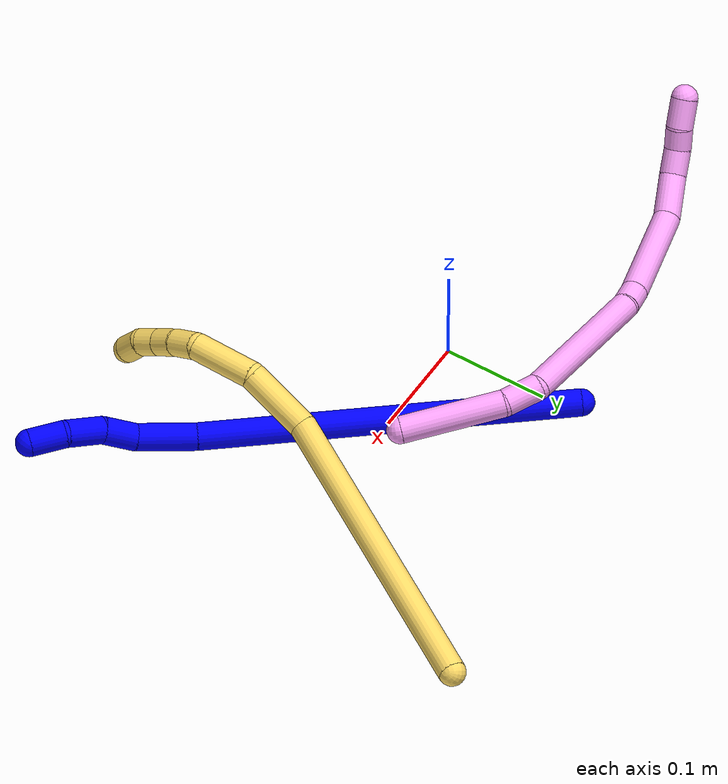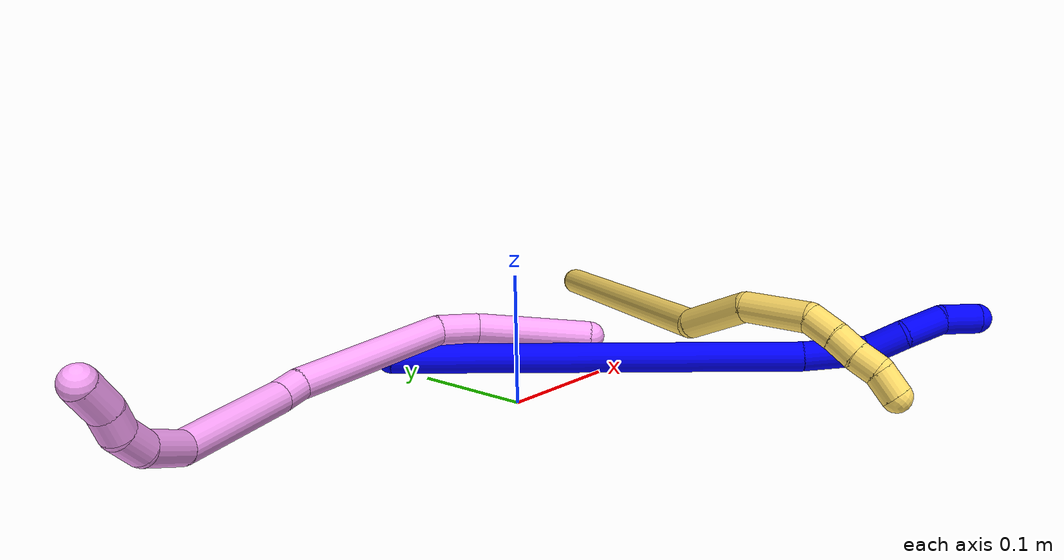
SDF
<sdf version="1.7">
 <world name="default">
  <model name="1">
   <static>0</static>
   <link name="1">
    <collision name="collision-cylinder-e_1_1_4">
     <pose>0.081277 -0.113949 0.100041 0.8503 0.492042 0.226413</pose>
     <geometry><cylinder><radius>0.0125</radius><length>0.344085</length></cylinder></geometry>
     <surface>
      <friction><ode><mu>1.16</mu><mu2>1.16</mu2><slip1>0</slip1><slip2>0</slip2></ode></friction>
      <contact><ode><kp>1e+06</kp><kd>1</kd><max_vel>0</max_vel><min_depth>0.001</min_depth></ode></contact>
     </surface>
    </collision>
    <visual name="visual-cylinder-e_1_1_4">
     <pose>0.081277 -0.113949 0.100041 0.8503 0.492042 0.226413</pose>
     <geometry><cylinder><radius>0.0125</radius><length>0.344085</length></cylinder></geometry>
     <material><ambient>0 0 1 1</ambient></material>
    </visual>
    <collision name="collision-cylinder-e_2_4_5">
     <pose>0.177201 -0.244045 0.216435 0.77905 0.567415 0.238248</pose>
     <geometry><cylinder><radius>0.0125</radius><length>0.054504</length></cylinder></geometry>
     <surface>
      <friction><ode><mu>1.16</mu><mu2>1.16</mu2><slip1>0</slip1><slip2>0</slip2></ode></friction>
      <contact><ode><kp>1e+06</kp><kd>1</kd><max_vel>0</max_vel><min_depth>0.001</min_depth></ode></contact>
     </surface>
    </collision>
    <visual name="visual-cylinder-e_2_4_5">
     <pose>0.177201 -0.244045 0.216435 0.77905 0.567415 0.238248</pose>
     <geometry><cylinder><radius>0.0125</radius><length>0.054504</length></cylinder></geometry>
     <material><ambient>0 0 1 1</ambient></material>
    </visual>
    <collision name="collision-cylinder-e_3_5_6">
     <pose>0.204347 -0.265776 0.241557 0.567055 0.876977 0.271592</pose>
     <geometry><cylinder><radius>0.0125</radius><length>0.032514</length></cylinder></geometry>
     <surface>
      <friction><ode><mu>1.16</mu><mu2>1.16</mu2><slip1>0</slip1><slip2>0</slip2></ode></friction>
      <contact><ode><kp>1e+06</kp><kd>1</kd><max_vel>0</max_vel><min_depth>0.001</min_depth></ode></contact>
     </surface>
    </collision>
    <visual name="visual-cylinder-e_3_5_6">
     <pose>0.204347 -0.265776 0.241557 0.567055 0.876977 0.271592</pose>
     <geometry><cylinder><radius>0.0125</radius><length>0.032514</length></cylinder></geometry>
     <material><ambient>0 0 1 1</ambient></material>
    </visual>
    <collision name="collision-cylinder-e_4_6_7">
     <pose>0.230526 -0.281422 0.25634 1.03212 0.86237 0.510629</pose>
     <geometry><cylinder><radius>0.0125</radius><length>0.036032</length></cylinder></geometry>
     <surface>
      <friction><ode><mu>1.16</mu><mu2>1.16</mu2><slip1>0</slip1><slip2>0</slip2></ode></friction>
      <contact><ode><kp>1e+06</kp><kd>1</kd><max_vel>0</max_vel><min_depth>0.001</min_depth></ode></contact>
     </surface>
    </collision>
    <visual name="visual-cylinder-e_4_6_7">
     <pose>0.230526 -0.281422 0.25634 1.03212 0.86237 0.510629</pose>
     <geometry><cylinder><radius>0.0125</radius><length>0.036032</length></cylinder></geometry>
     <material><ambient>0 0 1 1</ambient></material>
    </visual>
    <collision name="collision-cylinder-e_5_7_2">
     <pose>0.252561 -0.303795 0.269331 1.0551 0.533236 0.315612</pose>
     <geometry><cylinder><radius>0.0125</radius><length>0.032865</length></cylinder></geometry>
     <surface>
      <friction><ode><mu>1.16</mu><mu2>1.16</mu2><slip1>0</slip1><slip2>0</slip2></ode></friction>
      <contact><ode><kp>1e+06</kp><kd>1</kd><max_vel>0</max_vel><min_depth>0.001</min_depth></ode></contact>
     </surface>
    </collision>
    <visual name="visual-cylinder-e_5_7_2">
     <pose>0.252561 -0.303795 0.269331 1.0551 0.533236 0.315612</pose>
     <geometry><cylinder><radius>0.0125</radius><length>0.032865</length></cylinder></geometry>
     <material><ambient>0 0 1 1</ambient></material>
    </visual>
    <collision name="collision-sphere-2">
     <pose>0.260914 -0.316106 0.27631 0 -0 0</pose>
     <geometry><sphere><radius>0.0125</radius></sphere></geometry>
     <surface>
      <friction><ode><mu>1.16</mu><mu2>1.16</mu2><slip1>0</slip1><slip2>0</slip2></ode></friction>
      <contact><ode><kp>1e+06</kp><kd>1</kd><max_vel>0</max_vel><min_depth>0.001</min_depth></ode></contact>
     </surface>
    </collision>
    <visual name="visual-sphere-2">
     <pose>0.260914 -0.316106 0.27631 0 -0 0</pose>
     <geometry><sphere><radius>0.0125</radius></sphere></geometry>
     <material><ambient>0 0 1 1</ambient></material>
    </visual>
    <collision name="collision-sphere-7">
     <pose>0.244208 -0.291484 0.262353 0 -0 0</pose>
     <geometry><sphere><radius>0.0125</radius></sphere></geometry>
     <surface>
      <friction><ode><mu>1.16</mu><mu2>1.16</mu2><slip1>0</slip1><slip2>0</slip2></ode></friction>
      <contact><ode><kp>1e+06</kp><kd>1</kd><max_vel>0</max_vel><min_depth>0.001</min_depth></ode></contact>
     </surface>
    </collision>
    <visual name="visual-sphere-7">
     <pose>0.244208 -0.291484 0.262353 0 -0 0</pose>
     <geometry><sphere><radius>0.0125</radius></sphere></geometry>
     <material><ambient>0 0 1 1</ambient></material>
    </visual>
    <collision name="collision-sphere-6">
     <pose>0.216845 -0.27136 0.250326 0 -0 0</pose>
     <geometry><sphere><radius>0.0125</radius></sphere></geometry>
     <surface>
      <friction><ode><mu>1.16</mu><mu2>1.16</mu2><slip1>0</slip1><slip2>0</slip2></ode></friction>
      <contact><ode><kp>1e+06</kp><kd>1</kd><max_vel>0</max_vel><min_depth>0.001</min_depth></ode></contact>
     </surface>
    </collision>
    <visual name="visual-sphere-6">
     <pose>0.216845 -0.27136 0.250326 0 -0 0</pose>
     <geometry><sphere><radius>0.0125</radius></sphere></geometry>
     <material><ambient>0 0 1 1</ambient></material>
    </visual>
    <collision name="collision-sphere-5">
     <pose>0.191848 -0.260192 0.232788 0 -0 0</pose>
     <geometry><sphere><radius>0.0125</radius></sphere></geometry>
     <surface>
      <friction><ode><mu>1.16</mu><mu2>1.16</mu2><slip1>0</slip1><slip2>0</slip2></ode></friction>
      <contact><ode><kp>1e+06</kp><kd>1</kd><max_vel>0</max_vel><min_depth>0.001</min_depth></ode></contact>
     </surface>
    </collision>
    <visual name="visual-sphere-5">
     <pose>0.191848 -0.260192 0.232788 0 -0 0</pose>
     <geometry><sphere><radius>0.0125</radius></sphere></geometry>
     <material><ambient>0 0 1 1</ambient></material>
    </visual>
    <collision name="collision-sphere-1">
     <geometry><sphere><radius>0.0125</radius></sphere></geometry>
     <surface>
      <friction><ode><mu>1.16</mu><mu2>1.16</mu2><slip1>0</slip1><slip2>0</slip2></ode></friction>
      <contact><ode><kp>1e+06</kp><kd>1</kd><max_vel>0</max_vel><min_depth>0.001</min_depth></ode></contact>
     </surface>
    </collision>
    <visual name="visual-sphere-1">
     <geometry><sphere><radius>0.0125</radius></sphere></geometry>
     <material><ambient>0 0 1 1</ambient></material>
    </visual>
    <collision name="collision-sphere-4">
     <pose>0.162555 -0.227898 0.200082 0 -0 0</pose>
     <geometry><sphere><radius>0.0125</radius></sphere></geometry>
     <surface>
      <friction><ode><mu>1.16</mu><mu2>1.16</mu2><slip1>0</slip1><slip2>0</slip2></ode></friction>
      <contact><ode><kp>1e+06</kp><kd>1</kd><max_vel>0</max_vel><min_depth>0.001</min_depth></ode></contact>
     </surface>
    </collision>
    <visual name="visual-sphere-4">
     <pose>0.162555 -0.227898 0.200082 0 -0 0</pose>
     <geometry><sphere><radius>0.0125</radius></sphere></geometry>
     <material><ambient>0 0 1 1</ambient></material>
    </visual>
    <inertial>
     <pose>0.121751 -0.162551 0.144323 0 -0 0</pose>
     <mass>0.5</mass>
     <inertia>
      <ixx>0.00365</ixx>
      <ixy>0</ixy>
      <ixz>0</ixz>
      <iyy>0.003142</iyy>
      <iyz>0</iyz>
      <izz>0.000668</izz>
     </inertia>
    </inertial>
   </link>
   <pose>-0.005464 0.136641 0.011496 1.55281 -0.943608 -0.252803</pose>
  </model>
  <model name="4">
   <static>0</static>
   <link name="4">
    <collision name="collision-cylinder-e_1_1_4">
     <pose>-0.032458 0.034904 -0.002007 -1.62824 -0.748282 0.788212</pose>
     <geometry><cylinder><radius>0.0125</radius><length>0.095413</length></cylinder></geometry>
     <surface>
      <friction><ode><mu>1.16</mu><mu2>1.16</mu2><slip1>0</slip1><slip2>0</slip2></ode></friction>
      <contact><ode><kp>1e+06</kp><kd>1</kd><max_vel>0</max_vel><min_depth>0.001</min_depth></ode></contact>
     </surface>
    </collision>
    <visual name="visual-cylinder-e_1_1_4">
     <pose>-0.032458 0.034904 -0.002007 -1.62824 -0.748282 0.788212</pose>
     <geometry><cylinder><radius>0.0125</radius><length>0.095413</length></cylinder></geometry>
     <material><ambient>1 0.65098 0.996078 1</ambient></material>
    </visual>
    <collision name="collision-cylinder-e_2_4_5">
     <pose>-0.079661 0.078857 -0.002952 -1.45385 -1.01731 0.920761</pose>
     <geometry><cylinder><radius>0.0125</radius><length>0.034663</length></cylinder></geometry>
     <surface>
      <friction><ode><mu>1.16</mu><mu2>1.16</mu2><slip1>0</slip1><slip2>0</slip2></ode></friction>
      <contact><ode><kp>1e+06</kp><kd>1</kd><max_vel>0</max_vel><min_depth>0.001</min_depth></ode></contact>
     </surface>
    </collision>
    <visual name="visual-cylinder-e_2_4_5">
     <pose>-0.079661 0.078857 -0.002952 -1.45385 -1.01731 0.920761</pose>
     <geometry><cylinder><radius>0.0125</radius><length>0.034663</length></cylinder></geometry>
     <material><ambient>1 0.65098 0.996078 1</ambient></material>
    </visual>
    <collision name="collision-cylinder-e_3_5_6">
     <pose>-0.161052 0.095544 0.006049 -0.766244 -1.40698 0.658856</pose>
     <geometry><cylinder><radius>0.0125</radius><length>0.135103</length></cylinder></geometry>
     <surface>
      <friction><ode><mu>1.16</mu><mu2>1.16</mu2><slip1>0</slip1><slip2>0</slip2></ode></friction>
      <contact><ode><kp>1e+06</kp><kd>1</kd><max_vel>0</max_vel><min_depth>0.001</min_depth></ode></contact>
     </surface>
    </collision>
    <visual name="visual-cylinder-e_3_5_6">
     <pose>-0.161052 0.095544 0.006049 -0.766244 -1.40698 0.658856</pose>
     <geometry><cylinder><radius>0.0125</radius><length>0.135103</length></cylinder></geometry>
     <material><ambient>1 0.65098 0.996078 1</ambient></material>
    </visual>
    <collision name="collision-cylinder-e_4_6_7">
     <pose>-0.238188 0.101726 0.015674 0.71261 -1.36127 -0.585422</pose>
     <geometry><cylinder><radius>0.0125</radius><length>0.021446</length></cylinder></geometry>
     <surface>
      <friction><ode><mu>1.16</mu><mu2>1.16</mu2><slip1>0</slip1><slip2>0</slip2></ode></friction>
      <contact><ode><kp>1e+06</kp><kd>1</kd><max_vel>0</max_vel><min_depth>0.001</min_depth></ode></contact>
     </surface>
    </collision>
    <visual name="visual-cylinder-e_4_6_7">
     <pose>-0.238188 0.101726 0.015674 0.71261 -1.36127 -0.585422</pose>
     <geometry><cylinder><radius>0.0125</radius><length>0.021446</length></cylinder></geometry>
     <material><ambient>1 0.65098 0.996078 1</ambient></material>
    </visual>
    <collision name="collision-cylinder-e_5_7_8">
     <pose>-0.294693 0.093442 0.031924 0.438291 -1.23458 -0.313593</pose>
     <geometry><cylinder><radius>0.0125</radius><length>0.097492</length></cylinder></geometry>
     <surface>
      <friction><ode><mu>1.16</mu><mu2>1.16</mu2><slip1>0</slip1><slip2>0</slip2></ode></friction>
      <contact><ode><kp>1e+06</kp><kd>1</kd><max_vel>0</max_vel><min_depth>0.001</min_depth></ode></contact>
     </surface>
    </collision>
    <visual name="visual-cylinder-e_5_7_8">
     <pose>-0.294693 0.093442 0.031924 0.438291 -1.23458 -0.313593</pose>
     <geometry><cylinder><radius>0.0125</radius><length>0.097492</length></cylinder></geometry>
     <material><ambient>1 0.65098 0.996078 1</ambient></material>
    </visual>
    <collision name="collision-cylinder-e_6_8_9">
     <pose>-0.356047 0.084525 0.060763 0.145485 -0.815917 -0.06297</pose>
     <geometry><cylinder><radius>0.0125</radius><length>0.042116</length></cylinder></geometry>
     <surface>
      <friction><ode><mu>1.16</mu><mu2>1.16</mu2><slip1>0</slip1><slip2>0</slip2></ode></friction>
      <contact><ode><kp>1e+06</kp><kd>1</kd><max_vel>0</max_vel><min_depth>0.001</min_depth></ode></contact>
     </surface>
    </collision>
    <visual name="visual-cylinder-e_6_8_9">
     <pose>-0.356047 0.084525 0.060763 0.145485 -0.815917 -0.06297</pose>
     <geometry><cylinder><radius>0.0125</radius><length>0.042116</length></cylinder></geometry>
     <material><ambient>1 0.65098 0.996078 1</ambient></material>
    </visual>
    <collision name="collision-cylinder-e_7_9_10">
     <pose>-0.377653 0.08433 0.085977 -0.171706 -0.514022 0.045232</pose>
     <geometry><cylinder><radius>0.0125</radius><length>0.025495</length></cylinder></geometry>
     <surface>
      <friction><ode><mu>1.16</mu><mu2>1.16</mu2><slip1>0</slip1><slip2>0</slip2></ode></friction>
      <contact><ode><kp>1e+06</kp><kd>1</kd><max_vel>0</max_vel><min_depth>0.001</min_depth></ode></contact>
     </surface>
    </collision>
    <visual name="visual-cylinder-e_7_9_10">
     <pose>-0.377653 0.08433 0.085977 -0.171706 -0.514022 0.045232</pose>
     <geometry><cylinder><radius>0.0125</radius><length>0.025495</length></cylinder></geometry>
     <material><ambient>1 0.65098 0.996078 1</ambient></material>
    </visual>
    <collision name="collision-cylinder-e_8_10_11">
     <pose>-0.385513 0.088927 0.106675 -0.269859 -0.155955 0.021214</pose>
     <geometry><cylinder><radius>0.0125</radius><length>0.020504</length></cylinder></geometry>
     <surface>
      <friction><ode><mu>1.16</mu><mu2>1.16</mu2><slip1>0</slip1><slip2>0</slip2></ode></friction>
      <contact><ode><kp>1e+06</kp><kd>1</kd><max_vel>0</max_vel><min_depth>0.001</min_depth></ode></contact>
     </surface>
    </collision>
    <visual name="visual-cylinder-e_8_10_11">
     <pose>-0.385513 0.088927 0.106675 -0.269859 -0.155955 0.021214</pose>
     <geometry><cylinder><radius>0.0125</radius><length>0.020504</length></cylinder></geometry>
     <material><ambient>1 0.65098 0.996078 1</ambient></material>
    </visual>
    <collision name="collision-cylinder-e_9_11_2">
     <pose>-0.392122 0.094885 0.128965 -0.254457 -0.369689 0.047827</pose>
     <geometry><cylinder><radius>0.0125</radius><length>0.027767</length></cylinder></geometry>
     <surface>
      <friction><ode><mu>1.16</mu><mu2>1.16</mu2><slip1>0</slip1><slip2>0</slip2></ode></friction>
      <contact><ode><kp>1e+06</kp><kd>1</kd><max_vel>0</max_vel><min_depth>0.001</min_depth></ode></contact>
     </surface>
    </collision>
    <visual name="visual-cylinder-e_9_11_2">
     <pose>-0.392122 0.094885 0.128965 -0.254457 -0.369689 0.047827</pose>
     <geometry><cylinder><radius>0.0125</radius><length>0.027767</length></cylinder></geometry>
     <material><ambient>1 0.65098 0.996078 1</ambient></material>
    </visual>
    <collision name="collision-sphere-2">
     <pose>-0.397138 0.098144 0.141493 0 -0 0</pose>
     <geometry><sphere><radius>0.0125</radius></sphere></geometry>
     <surface>
      <friction><ode><mu>1.16</mu><mu2>1.16</mu2><slip1>0</slip1><slip2>0</slip2></ode></friction>
      <contact><ode><kp>1e+06</kp><kd>1</kd><max_vel>0</max_vel><min_depth>0.001</min_depth></ode></contact>
     </surface>
    </collision>
    <visual name="visual-sphere-2">
     <pose>-0.397138 0.098144 0.141493 0 -0 0</pose>
     <geometry><sphere><radius>0.0125</radius></sphere></geometry>
     <material><ambient>1 0.65098 0.996078 1</ambient></material>
    </visual>
    <collision name="collision-sphere-11">
     <pose>-0.387106 0.091627 0.116436 0 -0 0</pose>
     <geometry><sphere><radius>0.0125</radius></sphere></geometry>
     <surface>
      <friction><ode><mu>1.16</mu><mu2>1.16</mu2><slip1>0</slip1><slip2>0</slip2></ode></friction>
      <contact><ode><kp>1e+06</kp><kd>1</kd><max_vel>0</max_vel><min_depth>0.001</min_depth></ode></contact>
     </surface>
    </collision>
    <visual name="visual-sphere-11">
     <pose>-0.387106 0.091627 0.116436 0 -0 0</pose>
     <geometry><sphere><radius>0.0125</radius></sphere></geometry>
     <material><ambient>1 0.65098 0.996078 1</ambient></material>
    </visual>
    <collision name="collision-sphere-10">
     <pose>-0.383921 0.086227 0.096914 0 -0 0</pose>
     <geometry><sphere><radius>0.0125</radius></sphere></geometry>
     <surface>
      <friction><ode><mu>1.16</mu><mu2>1.16</mu2><slip1>0</slip1><slip2>0</slip2></ode></friction>
      <contact><ode><kp>1e+06</kp><kd>1</kd><max_vel>0</max_vel><min_depth>0.001</min_depth></ode></contact>
     </surface>
    </collision>
    <visual name="visual-sphere-10">
     <pose>-0.383921 0.086227 0.096914 0 -0 0</pose>
     <geometry><sphere><radius>0.0125</radius></sphere></geometry>
     <material><ambient>1 0.65098 0.996078 1</ambient></material>
    </visual>
    <collision name="collision-sphere-9">
     <pose>-0.371385 0.082433 0.075039 0 -0 0</pose>
     <geometry><sphere><radius>0.0125</radius></sphere></geometry>
     <surface>
      <friction><ode><mu>1.16</mu><mu2>1.16</mu2><slip1>0</slip1><slip2>0</slip2></ode></friction>
      <contact><ode><kp>1e+06</kp><kd>1</kd><max_vel>0</max_vel><min_depth>0.001</min_depth></ode></contact>
     </surface>
    </collision>
    <visual name="visual-sphere-9">
     <pose>-0.371385 0.082433 0.075039 0 -0 0</pose>
     <geometry><sphere><radius>0.0125</radius></sphere></geometry>
     <material><ambient>1 0.65098 0.996078 1</ambient></material>
    </visual>
    <collision name="collision-sphere-4">
     <pose>-0.064917 0.069809 -0.004015 0 -0 0</pose>
     <geometry><sphere><radius>0.0125</radius></sphere></geometry>
     <surface>
      <friction><ode><mu>1.16</mu><mu2>1.16</mu2><slip1>0</slip1><slip2>0</slip2></ode></friction>
      <contact><ode><kp>1e+06</kp><kd>1</kd><max_vel>0</max_vel><min_depth>0.001</min_depth></ode></contact>
     </surface>
    </collision>
    <visual name="visual-sphere-4">
     <pose>-0.064917 0.069809 -0.004015 0 -0 0</pose>
     <geometry><sphere><radius>0.0125</radius></sphere></geometry>
     <material><ambient>1 0.65098 0.996078 1</ambient></material>
    </visual>
    <collision name="collision-sphere-1">
     <geometry><sphere><radius>0.0125</radius></sphere></geometry>
     <surface>
      <friction><ode><mu>1.16</mu><mu2>1.16</mu2><slip1>0</slip1><slip2>0</slip2></ode></friction>
      <contact><ode><kp>1e+06</kp><kd>1</kd><max_vel>0</max_vel><min_depth>0.001</min_depth></ode></contact>
     </surface>
    </collision>
    <visual name="visual-sphere-1">
     <geometry><sphere><radius>0.0125</radius></sphere></geometry>
     <material><ambient>1 0.65098 0.996078 1</ambient></material>
    </visual>
    <collision name="collision-sphere-8">
     <pose>-0.340709 0.086617 0.046486 0 -0 0</pose>
     <geometry><sphere><radius>0.0125</radius></sphere></geometry>
     <surface>
      <friction><ode><mu>1.16</mu><mu2>1.16</mu2><slip1>0</slip1><slip2>0</slip2></ode></friction>
      <contact><ode><kp>1e+06</kp><kd>1</kd><max_vel>0</max_vel><min_depth>0.001</min_depth></ode></contact>
     </surface>
    </collision>
    <visual name="visual-sphere-8">
     <pose>-0.340709 0.086617 0.046486 0 -0 0</pose>
     <geometry><sphere><radius>0.0125</radius></sphere></geometry>
     <material><ambient>1 0.65098 0.996078 1</ambient></material>
    </visual>
    <collision name="collision-sphere-5">
     <pose>-0.094405 0.087905 -0.001889 0 -0 0</pose>
     <geometry><sphere><radius>0.0125</radius></sphere></geometry>
     <surface>
      <friction><ode><mu>1.16</mu><mu2>1.16</mu2><slip1>0</slip1><slip2>0</slip2></ode></friction>
      <contact><ode><kp>1e+06</kp><kd>1</kd><max_vel>0</max_vel><min_depth>0.001</min_depth></ode></contact>
     </surface>
    </collision>
    <visual name="visual-sphere-5">
     <pose>-0.094405 0.087905 -0.001889 0 -0 0</pose>
     <geometry><sphere><radius>0.0125</radius></sphere></geometry>
     <material><ambient>1 0.65098 0.996078 1</ambient></material>
    </visual>
    <collision name="collision-sphere-6">
     <pose>-0.227699 0.103184 0.013987 0 -0 0</pose>
     <geometry><sphere><radius>0.0125</radius></sphere></geometry>
     <surface>
      <friction><ode><mu>1.16</mu><mu2>1.16</mu2><slip1>0</slip1><slip2>0</slip2></ode></friction>
      <contact><ode><kp>1e+06</kp><kd>1</kd><max_vel>0</max_vel><min_depth>0.001</min_depth></ode></contact>
     </surface>
    </collision>
    <visual name="visual-sphere-6">
     <pose>-0.227699 0.103184 0.013987 0 -0 0</pose>
     <geometry><sphere><radius>0.0125</radius></sphere></geometry>
     <material><ambient>1 0.65098 0.996078 1</ambient></material>
    </visual>
    <collision name="collision-sphere-7">
     <pose>-0.248676 0.100267 0.017362 0 -0 0</pose>
     <geometry><sphere><radius>0.0125</radius></sphere></geometry>
     <surface>
      <friction><ode><mu>1.16</mu><mu2>1.16</mu2><slip1>0</slip1><slip2>0</slip2></ode></friction>
      <contact><ode><kp>1e+06</kp><kd>1</kd><max_vel>0</max_vel><min_depth>0.001</min_depth></ode></contact>
     </surface>
    </collision>
    <visual name="visual-sphere-7">
     <pose>-0.248676 0.100267 0.017362 0 -0 0</pose>
     <geometry><sphere><radius>0.0125</radius></sphere></geometry>
     <material><ambient>1 0.65098 0.996078 1</ambient></material>
    </visual>
    <inertial>
     <pose>-0.209744 0.080863 0.028983 0 -0 0</pose>
     <mass>0.5</mass>
     <inertia>
      <ixx>0.000128</ixx>
      <ixy>0</ixy>
      <ixz>0</ixz>
      <iyy>0.000403</iyy>
      <iyz>0</iyz>
      <izz>0.00029</izz>
     </inertia>
    </inertial>
   </link>
   <pose>0.116406 0.022945 0.023857 0.482844 -0.269177 -0.033352</pose>
  </model>
  <model name="5">
   <static>0</static>
   <link name="5">
    <collision name="collision-cylinder-e_1_1_4">
     <pose>-0.086489 -0.110874 -0.026471 1.80515 -0.64907 -0.805784</pose>
     <geometry><cylinder><radius>0.0125</radius><length>0.286175</length></cylinder></geometry>
     <surface>
      <friction><ode><mu>1.16</mu><mu2>1.16</mu2><slip1>0</slip1><slip2>0</slip2></ode></friction>
      <contact><ode><kp>1e+06</kp><kd>1</kd><max_vel>0</max_vel><min_depth>0.001</min_depth></ode></contact>
     </surface>
    </collision>
    <visual name="visual-cylinder-e_1_1_4">
     <pose>-0.086489 -0.110874 -0.026471 1.80515 -0.64907 -0.805784</pose>
     <geometry><cylinder><radius>0.0125</radius><length>0.286175</length></cylinder></geometry>
     <material><ambient>1 0.858824 0.4 1</ambient></material>
    </visual>
    <collision name="collision-cylinder-e_2_4_5">
     <pose>-0.190189 -0.246458 -0.042933 1.18596 -0.573289 -0.392163</pose>
     <geometry><cylinder><radius>0.0125</radius><length>0.063465</length></cylinder></geometry>
     <surface>
      <friction><ode><mu>1.16</mu><mu2>1.16</mu2><slip1>0</slip1><slip2>0</slip2></ode></friction>
      <contact><ode><kp>1e+06</kp><kd>1</kd><max_vel>0</max_vel><min_depth>0.001</min_depth></ode></contact>
     </surface>
    </collision>
    <visual name="visual-cylinder-e_2_4_5">
     <pose>-0.190189 -0.246458 -0.042933 1.18596 -0.573289 -0.392163</pose>
     <geometry><cylinder><radius>0.0125</radius><length>0.063465</length></cylinder></geometry>
     <material><ambient>1 0.858824 0.4 1</ambient></material>
    </visual>
    <collision name="collision-cylinder-e_3_5_6">
     <pose>-0.214516 -0.299678 -0.029522 1.45201 -0.242921 -0.215877</pose>
     <geometry><cylinder><radius>0.0125</radius><length>0.059164</length></cylinder></geometry>
     <surface>
      <friction><ode><mu>1.16</mu><mu2>1.16</mu2><slip1>0</slip1><slip2>0</slip2></ode></friction>
      <contact><ode><kp>1e+06</kp><kd>1</kd><max_vel>0</max_vel><min_depth>0.001</min_depth></ode></contact>
     </surface>
    </collision>
    <visual name="visual-cylinder-e_3_5_6">
     <pose>-0.214516 -0.299678 -0.029522 1.45201 -0.242921 -0.215877</pose>
     <geometry><cylinder><radius>0.0125</radius><length>0.059164</length></cylinder></geometry>
     <material><ambient>1 0.858824 0.4 1</ambient></material>
    </visual>
    <collision name="collision-cylinder-e_4_6_7">
     <pose>-0.220955 -0.340755 -0.028993 1.79561 0.052505 0.065859</pose>
     <geometry><cylinder><radius>0.0125</radius><length>0.025816</length></cylinder></geometry>
     <surface>
      <friction><ode><mu>1.16</mu><mu2>1.16</mu2><slip1>0</slip1><slip2>0</slip2></ode></friction>
      <contact><ode><kp>1e+06</kp><kd>1</kd><max_vel>0</max_vel><min_depth>0.001</min_depth></ode></contact>
     </surface>
    </collision>
    <visual name="visual-cylinder-e_4_6_7">
     <pose>-0.220955 -0.340755 -0.028993 1.79561 0.052505 0.065859</pose>
     <geometry><cylinder><radius>0.0125</radius><length>0.025816</length></cylinder></geometry>
     <material><ambient>1 0.858824 0.4 1</ambient></material>
    </visual>
    <collision name="collision-cylinder-e_5_7_8">
     <pose>-0.218483 -0.363637 -0.034934 1.85983 0.165164 0.221027</pose>
     <geometry><cylinder><radius>0.0125</radius><length>0.021822</length></cylinder></geometry>
     <surface>
      <friction><ode><mu>1.16</mu><mu2>1.16</mu2><slip1>0</slip1><slip2>0</slip2></ode></friction>
      <contact><ode><kp>1e+06</kp><kd>1</kd><max_vel>0</max_vel><min_depth>0.001</min_depth></ode></contact>
     </surface>
    </collision>
    <visual name="visual-cylinder-e_5_7_8">
     <pose>-0.218483 -0.363637 -0.034934 1.85983 0.165164 0.221027</pose>
     <geometry><cylinder><radius>0.0125</radius><length>0.021822</length></cylinder></geometry>
     <material><ambient>1 0.858824 0.4 1</ambient></material>
    </visual>
    <collision name="collision-cylinder-e_6_8_9">
     <pose>-0.21494 -0.383931 -0.039715 1.7408 0.171125 0.202803</pose>
     <geometry><cylinder><radius>0.0125</radius><length>0.020549</length></cylinder></geometry>
     <surface>
      <friction><ode><mu>1.16</mu><mu2>1.16</mu2><slip1>0</slip1><slip2>0</slip2></ode></friction>
      <contact><ode><kp>1e+06</kp><kd>1</kd><max_vel>0</max_vel><min_depth>0.001</min_depth></ode></contact>
     </surface>
    </collision>
    <visual name="visual-cylinder-e_6_8_9">
     <pose>-0.21494 -0.383931 -0.039715 1.7408 0.171125 0.202803</pose>
     <geometry><cylinder><radius>0.0125</radius><length>0.020549</length></cylinder></geometry>
     <material><ambient>1 0.858824 0.4 1</ambient></material>
    </visual>
    <collision name="collision-cylinder-e_7_9_2">
     <pose>-0.208212 -0.403196 -0.046045 2.03221 0.447501 0.703972</pose>
     <geometry><cylinder><radius>0.0125</radius><length>0.023009</length></cylinder></geometry>
     <surface>
      <friction><ode><mu>1.16</mu><mu2>1.16</mu2><slip1>0</slip1><slip2>0</slip2></ode></friction>
      <contact><ode><kp>1e+06</kp><kd>1</kd><max_vel>0</max_vel><min_depth>0.001</min_depth></ode></contact>
     </surface>
    </collision>
    <visual name="visual-cylinder-e_7_9_2">
     <pose>-0.208212 -0.403196 -0.046045 2.03221 0.447501 0.703972</pose>
     <geometry><cylinder><radius>0.0125</radius><length>0.023009</length></cylinder></geometry>
     <material><ambient>1 0.858824 0.4 1</ambient></material>
    </visual>
    <collision name="collision-sphere-2">
     <pose>-0.203234 -0.412484 -0.050663 0 -0 0</pose>
     <geometry><sphere><radius>0.0125</radius></sphere></geometry>
     <surface>
      <friction><ode><mu>1.16</mu><mu2>1.16</mu2><slip1>0</slip1><slip2>0</slip2></ode></friction>
      <contact><ode><kp>1e+06</kp><kd>1</kd><max_vel>0</max_vel><min_depth>0.001</min_depth></ode></contact>
     </surface>
    </collision>
    <visual name="visual-sphere-2">
     <pose>-0.203234 -0.412484 -0.050663 0 -0 0</pose>
     <geometry><sphere><radius>0.0125</radius></sphere></geometry>
     <material><ambient>1 0.858824 0.4 1</ambient></material>
    </visual>
    <collision name="collision-sphere-9">
     <pose>-0.21319 -0.393909 -0.041428 0 -0 0</pose>
     <geometry><sphere><radius>0.0125</radius></sphere></geometry>
     <surface>
      <friction><ode><mu>1.16</mu><mu2>1.16</mu2><slip1>0</slip1><slip2>0</slip2></ode></friction>
      <contact><ode><kp>1e+06</kp><kd>1</kd><max_vel>0</max_vel><min_depth>0.001</min_depth></ode></contact>
     </surface>
    </collision>
    <visual name="visual-sphere-9">
     <pose>-0.21319 -0.393909 -0.041428 0 -0 0</pose>
     <geometry><sphere><radius>0.0125</radius></sphere></geometry>
     <material><ambient>1 0.858824 0.4 1</ambient></material>
    </visual>
    <collision name="collision-sphere-4">
     <pose>-0.172977 -0.221748 -0.052941 0 -0 0</pose>
     <geometry><sphere><radius>0.0125</radius></sphere></geometry>
     <surface>
      <friction><ode><mu>1.16</mu><mu2>1.16</mu2><slip1>0</slip1><slip2>0</slip2></ode></friction>
      <contact><ode><kp>1e+06</kp><kd>1</kd><max_vel>0</max_vel><min_depth>0.001</min_depth></ode></contact>
     </surface>
    </collision>
    <visual name="visual-sphere-4">
     <pose>-0.172977 -0.221748 -0.052941 0 -0 0</pose>
     <geometry><sphere><radius>0.0125</radius></sphere></geometry>
     <material><ambient>1 0.858824 0.4 1</ambient></material>
    </visual>
    <collision name="collision-sphere-1">
     <geometry><sphere><radius>0.0125</radius></sphere></geometry>
     <surface>
      <friction><ode><mu>1.16</mu><mu2>1.16</mu2><slip1>0</slip1><slip2>0</slip2></ode></friction>
      <contact><ode><kp>1e+06</kp><kd>1</kd><max_vel>0</max_vel><min_depth>0.001</min_depth></ode></contact>
     </surface>
    </collision>
    <visual name="visual-sphere-1">
     <geometry><sphere><radius>0.0125</radius></sphere></geometry>
     <material><ambient>1 0.858824 0.4 1</ambient></material>
    </visual>
    <collision name="collision-sphere-8">
     <pose>-0.216689 -0.373953 -0.038002 0 -0 0</pose>
     <geometry><sphere><radius>0.0125</radius></sphere></geometry>
     <surface>
      <friction><ode><mu>1.16</mu><mu2>1.16</mu2><slip1>0</slip1><slip2>0</slip2></ode></friction>
      <contact><ode><kp>1e+06</kp><kd>1</kd><max_vel>0</max_vel><min_depth>0.001</min_depth></ode></contact>
     </surface>
    </collision>
    <visual name="visual-sphere-8">
     <pose>-0.216689 -0.373953 -0.038002 0 -0 0</pose>
     <geometry><sphere><radius>0.0125</radius></sphere></geometry>
     <material><ambient>1 0.858824 0.4 1</ambient></material>
    </visual>
    <collision name="collision-sphere-5">
     <pose>-0.207401 -0.271167 -0.032925 0 -0 0</pose>
     <geometry><sphere><radius>0.0125</radius></sphere></geometry>
     <surface>
      <friction><ode><mu>1.16</mu><mu2>1.16</mu2><slip1>0</slip1><slip2>0</slip2></ode></friction>
      <contact><ode><kp>1e+06</kp><kd>1</kd><max_vel>0</max_vel><min_depth>0.001</min_depth></ode></contact>
     </surface>
    </collision>
    <visual name="visual-sphere-5">
     <pose>-0.207401 -0.271167 -0.032925 0 -0 0</pose>
     <geometry><sphere><radius>0.0125</radius></sphere></geometry>
     <material><ambient>1 0.858824 0.4 1</ambient></material>
    </visual>
    <collision name="collision-sphere-6">
     <pose>-0.221632 -0.328189 -0.026119 0 -0 0</pose>
     <geometry><sphere><radius>0.0125</radius></sphere></geometry>
     <surface>
      <friction><ode><mu>1.16</mu><mu2>1.16</mu2><slip1>0</slip1><slip2>0</slip2></ode></friction>
      <contact><ode><kp>1e+06</kp><kd>1</kd><max_vel>0</max_vel><min_depth>0.001</min_depth></ode></contact>
     </surface>
    </collision>
    <visual name="visual-sphere-6">
     <pose>-0.221632 -0.328189 -0.026119 0 -0 0</pose>
     <geometry><sphere><radius>0.0125</radius></sphere></geometry>
     <material><ambient>1 0.858824 0.4 1</ambient></material>
    </visual>
    <collision name="collision-sphere-7">
     <pose>-0.220277 -0.353321 -0.031866 0 -0 0</pose>
     <geometry><sphere><radius>0.0125</radius></sphere></geometry>
     <surface>
      <friction><ode><mu>1.16</mu><mu2>1.16</mu2><slip1>0</slip1><slip2>0</slip2></ode></friction>
      <contact><ode><kp>1e+06</kp><kd>1</kd><max_vel>0</max_vel><min_depth>0.001</min_depth></ode></contact>
     </surface>
    </collision>
    <visual name="visual-sphere-7">
     <pose>-0.220277 -0.353321 -0.031866 0 -0 0</pose>
     <geometry><sphere><radius>0.0125</radius></sphere></geometry>
     <material><ambient>1 0.858824 0.4 1</ambient></material>
    </visual>
    <inertial>
     <pose>-0.138385 -0.197999 -0.030866 0 -0 0</pose>
     <mass>0.5</mass>
     <inertia>
      <ixx>-2.7e-05</ixx>
      <ixy>0</ixy>
      <ixz>0</ixz>
      <iyy>-0.000639</iyy>
      <iyz>0</iyz>
      <izz>0.002766</izz>
     </inertia>
    </inertial>
   </link>
   <pose>0.310882 0.19929 0.012066 0.326686 0.723718 0.298387</pose>
  </model>
 </world>
</sdf>
